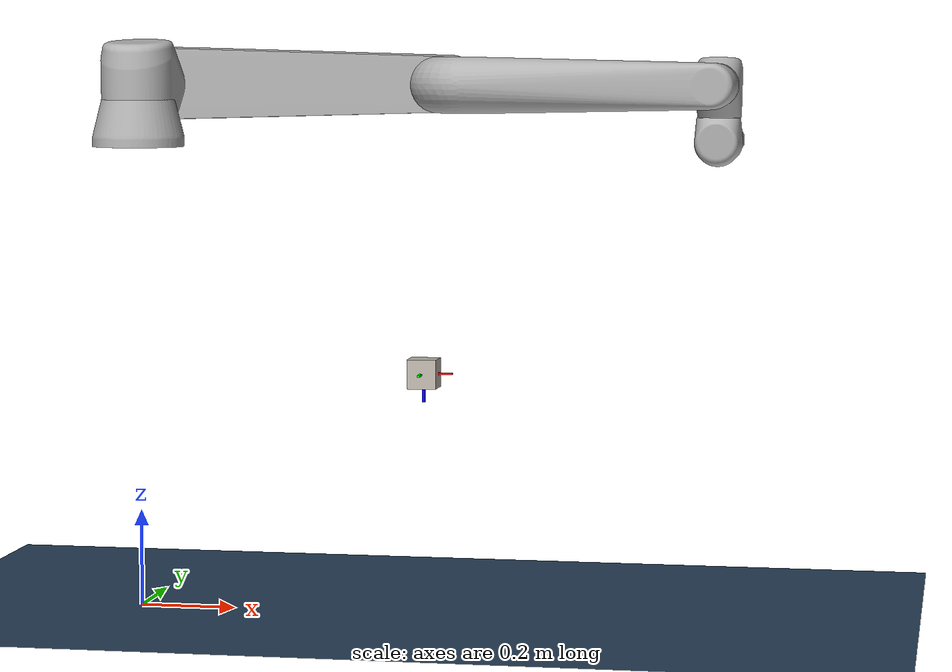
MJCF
<mujoco model="cube_ur10_scene">
  <asset>
    <!-- include basic cube textures/materials -->
    <texture name="cube" type="cube"
             fileup="../../reorientation_cube/textures/fileup.png"
             fileback="../../reorientation_cube/textures/fileback.png"
             filedown="../../reorientation_cube/textures/filedown.png"
             filefront="../../reorientation_cube/textures/filefront.png"
             fileleft="../../reorientation_cube/textures/fileleft.png"
             fileright="../../reorientation_cube/textures/fileright.png"/>
    <material name="cube" texture="cube"/>
    <material name="red" rgba="1 0 0 1"/>
    <material name="green" rgba="0 1 0 1"/>
    <material name="blue" rgba="0 0 1 1"/>
    <!-- ground texture + material (for floor) -->
    <texture type="2d" name="groundplane" builtin="checker" mark="edge" rgb1="0.2 0.3 0.4" rgb2="0.1 0.2 0.3"
      markrgb="0.8 0.8 0.8" width="300" height="300"/>
    <material name="groundplane" texture="groundplane" texuniform="true" texrepeat="5 5" reflectance="0.2"/>
  </asset>

  <!-- match IMU rate: 0.0025s -> 400Hz -->
  <option timestep="0.0025" gravity="0 0 0"/>

  <!-- include UR10 model (relative path) -->
  <include file="../../ur10/mjcf/ur10.xml"/>

  <worldbody>
    <!-- directional light and ground plane (from ur10 scene) -->
    <light pos="0 0 1.5" dir="0 0 -1" directional="true"/>
    <geom name="floor" size="0 0 0.05" type="plane" material="groundplane"/>

    <!-- keep any world content from included UR10; add a cube with freejoint for orientation visualization -->
    <body name="cube" pos="0.6 0.0 0.5" quat="0 1 0 0">
      <freejoint/>
      <geom name="cube" type="box" size=".03 .03 .03" mass=".122" material="cube"/>
      <!-- visualization axes (rotate with cube) -->
      <geom name="axis_x" type="box" size=".03 .002 .002" pos=".03 0 0" material="red"/>
      <geom name="axis_y" type="box" size=".003 .03 .002" pos="0 .03 0" material="green"/>
      <geom name="axis_z" type="box" size=".003 .002 .03" pos="0 0 .03" material="blue"/>
    </body>
  </worldbody>

  <sensor>
    <framepos name="cube_position" objtype="body" objname="cube"/>
    <framequat name="cube_orientation" objtype="body" objname="cube"/>
    <framelinvel name="cube_linear_velocity" objtype="body" objname="cube"/>
    <frameangvel name="cube_angular_velocity" objtype="body" objname="cube"/>
    <!-- also expose UR10 attachment site if available -->
    <framepos name="ee_position" objtype="body" objname="attachment"/>
    <framequat name="ee_orientation" objtype="body" objname="attachment"/>
  </sensor>
</mujoco>

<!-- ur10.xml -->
<mujoco model="ur10">
  <compiler angle="radian" meshdir="../assets" autolimits="true"/>
  <option integrator="implicitfast" gravity="0 0 -9.81"/>

  <default>
    <default class="ur10">
      <joint axis="0 1 0" range="-6.28319 6.28319" armature="0.1"/>
      <position ctrlrange="-6.2831 6.2831"/>
      <general biastype="affine" ctrlrange="-6.2831 6.2831" gainprm="5000" biasprm="0 -5000 -500"/>
    </default>
  </default>

  <asset>
    <mesh name="base" file="../assets/base.stl"/>
    <mesh name="shoulder" file="../assets/shoulder.stl"/>
    <mesh name="upperarm" file="../assets/upperarm.stl"/>
    <mesh name="forearm" file="../assets/forearm.stl"/>
    <mesh name="wrist1" file="../assets/wrist1.stl"/>
    <mesh name="wrist2" file="../assets/wrist2.stl"/>
    <mesh name="wrist3" file="../assets/wrist3.stl"/>
  </asset>

  <worldbody>
    <body name="link0" childclass="ur10" pos="0 0 0.96">
      <geom quat="-1 0 0 0" type="mesh" rgba="0.7 0.7 0.7 1" mesh="base"/>
      <body name="shoulder_link" pos="0 0 0.1273" quat="0 0 0 1">
        <inertial pos="0.021 -0.027 0" quat="0.988634 -0.000680926 0.148578 -0.0229591" mass="7.1" diaginertia="0.0353866 0.0352903 0.0202532"/>
        <joint name="joint1" pos="0 0 0" axis="0 0 1" range="-6.28319 6.28319" damping="10"/>
        <geom quat="0 0 0 1" type="mesh" rgba="0.7 0.7 0.7 1" mesh="shoulder"/>
        <body name="upper_arm_link" quat="0.707107 0.707107 0 0">
          <inertial pos="-0.232 0 0.158" quat="0.500033 0.499784 0.489585 0.510381" mass="12.7" diaginertia="0.77068 0.769758 0.0278114"/>
          <joint name="joint2" pos="0 0 0" axis="0 0 1" range="-6.28319 6.28319" damping="10"/>
          <geom pos="0 0 0.220941" quat="0.5 0.5 -0.5 -0.5" type="mesh" rgba="0.7 0.7 0.7 1" mesh="upperarm"/>
          <body name="forearm_link" pos="-0.612 0 0">
            <inertial pos="-0.3323 0 0.068" quat="0.492051 0.507971 0.507346 0.492394" mass="4.27" diaginertia="0.30928 0.306743 0.00985709"/>
            <joint name="joint3" pos="0 0 0" axis="0 0 1" range="-3.14159 3.14159" damping="5"/>
            <geom pos="0 0 0.049042" quat="0.5 0.5 -0.5 -0.5" type="mesh" rgba="0.7 0.7 0.7 1" mesh="forearm"/>
            <body name="wrist_1_link" pos="-0.5723 0 0.163941">
              <inertial pos="0 -0.018 0.007" quat="0.525776 0.850564 -0.0100431 9.45801e-05" mass="2" diaginertia="0.00296017 0.00269992 0.00209991"/>
              <joint name="joint4" pos="0 0 0" axis="0 0 1" range="-6.28319 6.28319" damping="2"/>
              <geom pos="0 0 -0.1149" quat="0.707107 0.707107 0 0" type="mesh" rgba="0.7 0.7 0.7 1" mesh="wrist1"/>
              <body name="wrist_2_link" pos="0 -0.1157 -2.37305e-11" quat="0.707107 0.707107 0 0">
                <inertial pos="0 0.018 -0.007" quat="0.525776 0.850564 -0.0100431 9.45801e-05" mass="2" diaginertia="0.00296017 0.00269992 0.00209991"/>
                <joint name="joint5" pos="0 0 0" axis="0 0 1" range="-6.28319 6.28319" damping="2"/>
                <geom pos="0 0 -0.1158" quat="1 0 0 0" type="mesh" rgba="0.7 0.7 0.7 1" mesh="wrist2"/>
                <body name="wrist_3_link" pos="0 0.0922 -1.89105e-11" quat="0.707107 -0.707107 0 0">
                  <inertial pos="0 0 -0.026" quat="0.707107 0 0 0.707107" mass="0.365" diaginertia="0.00041 0.0004 0.00034"/>
                  <joint name="joint6" pos="0 0 0" axis="0 0 1" range="-6.28319 6.28319" damping="2"/>
                  <geom pos="0 0 -0.0922" quat="0.707107 0.707107 0 0" type="mesh" rgba="0.7 0.7 0.7 1" mesh="wrist3"/>
                  <body name="attachment" pos="0 0 0.01" quat="0.707107 0 0 -0.707107"></body>
                </body>
              </body>
            </body>
          </body>
        </body>
      </body>
    </body>
  </worldbody>

  <actuator>
    <general class="ur10" name="actuator1" joint="joint1" gainprm="4500" biasprm="0 -4500 -450" forcerange="-330 330"/>
    <general class="ur10" name="actuator2" joint="joint2" gainprm="4500" biasprm="0 -4500 -450" forcerange="-330 330"/>
    <general class="ur10" name="actuator3" joint="joint3" gainprm="3500" biasprm="0 -3500 -350" forcerange="-150 150" ctrlrange="-3.1415 3.1415"/>
    <general class="ur10" name="actuator4" joint="joint4" gainprm="3500" biasprm="0 -3500 -350" forcerange="-56 56"/>
    <general class="ur10" name="actuator5" joint="joint5" gainprm="2000" biasprm="0 -2000 -200" forcerange="-56 56"/>
    <general class="ur10" name="actuator6" joint="joint6" gainprm="2000" biasprm="0 -2000 -200" forcerange="-56 56"/>
  </actuator>

  <keyframe>
    <key name="home" qpos="0.0 -1.5708 0.0 -1.5708 0.0 0.0" ctrl="0.0 -1.5708 0.0 -1.5708 0.0 0.0"/>
  </keyframe>

</mujoco>
